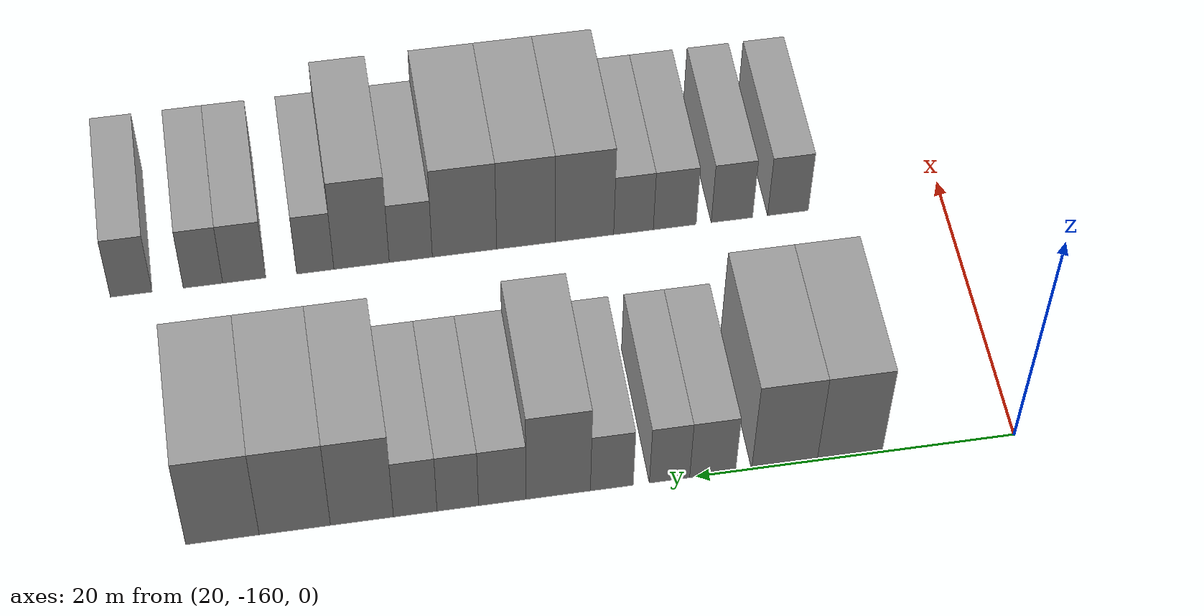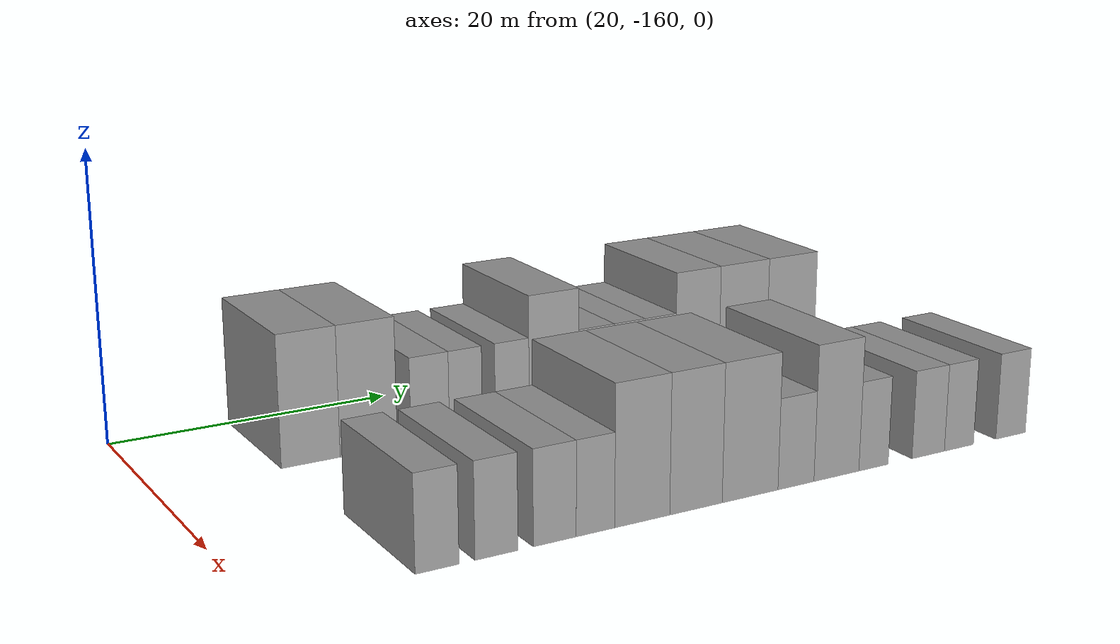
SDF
<sdf version="1.6">
 <world name="default">
  <model name="building_13">
   <static>1</static>
   <pose>25.0000 -149.5801 0 0.000000 0.000000 0.000000</pose>
   <link name="link">
    <pose>0 0 4.50 0 0 0</pose>
    <collision name="collision"><geometry><box><size>10.0000 4.0890 9.0000</size></box></geometry></collision>
    <visual name="visual">
     <cast_shadows>0</cast_shadows>
     <geometry><box><size>10.0000 4.0890 9.0000</size></box></geometry>
     <material>
      <script>
       <uri>model://grey_wall/materials/scripts</uri>
       <uri>model://grey_wall/materials/textures</uri>
       <name>vrc/grey_wall</name>
      </script>
     </material>
    </visual>
   </link>
  </model>
  <model name="building_14">
   <static>1</static>
   <pose>25.0000 -145.4824 0 0.000000 0.000000 0.000000</pose>
   <link name="link">
    <pose>0 0 4.50 0 0 0</pose>
    <collision name="collision"><geometry><box><size>10.0000 4.1064 9.0000</size></box></geometry></collision>
    <visual name="visual">
     <cast_shadows>0</cast_shadows>
     <geometry><box><size>10.0000 4.1064 9.0000</size></box></geometry>
     <material>
      <script>
       <uri>model://grey_wall/materials/scripts</uri>
       <uri>model://grey_wall/materials/textures</uri>
       <name>vrc/grey_wall</name>
      </script>
     </material>
    </visual>
   </link>
  </model>
  <model name="building_15">
   <static>1</static>
   <pose>25.0000 -140.9967 0 0.000000 0.000000 0.000000</pose>
   <link name="link">
    <pose>0 0 3.00 0 0 0</pose>
    <collision name="collision"><geometry><box><size>10.0000 2.8648 6.0000</size></box></geometry></collision>
    <visual name="visual">
     <cast_shadows>0</cast_shadows>
     <geometry><box><size>10.0000 2.8648 6.0000</size></box></geometry>
     <material>
      <script>
       <uri>model://grey_wall/materials/scripts</uri>
       <uri>model://grey_wall/materials/textures</uri>
       <name>vrc/grey_wall</name>
      </script>
     </material>
    </visual>
   </link>
  </model>
  <model name="building_16">
   <static>1</static>
   <pose>25.0000 -138.3111 0 0.000000 0.000000 0.000000</pose>
   <link name="link">
    <pose>0 0 3.00 0 0 0</pose>
    <collision name="collision"><geometry><box><size>10.0000 2.5065 6.0000</size></box></geometry></collision>
    <visual name="visual">
     <cast_shadows>0</cast_shadows>
     <geometry><box><size>10.0000 2.5065 6.0000</size></box></geometry>
     <material>
      <script>
       <uri>model://grey_wall/materials/scripts</uri>
       <uri>model://grey_wall/materials/textures</uri>
       <name>vrc/grey_wall</name>
      </script>
     </material>
    </visual>
   </link>
  </model>
  <model name="building_17">
   <static>1</static>
   <pose>25.0000 -134.7319 0 0.000000 0.000000 0.000000</pose>
   <link name="link">
    <pose>0 0 3.00 0 0 0</pose>
    <collision name="collision"><geometry><box><size>10.0000 2.6518 6.0000</size></box></geometry></collision>
    <visual name="visual">
     <cast_shadows>0</cast_shadows>
     <geometry><box><size>10.0000 2.6518 6.0000</size></box></geometry>
     <material>
      <script>
       <uri>model://grey_wall/materials/scripts</uri>
       <uri>model://grey_wall/materials/textures</uri>
       <name>vrc/grey_wall</name>
      </script>
     </material>
    </visual>
   </link>
  </model>
  <model name="building_18">
   <static>1</static>
   <pose>25.0000 -131.4228 0 0.000000 0.000000 0.000000</pose>
   <link name="link">
    <pose>0 0 4.50 0 0 0</pose>
    <collision name="collision"><geometry><box><size>10.0000 3.9664 9.0000</size></box></geometry></collision>
    <visual name="visual">
     <cast_shadows>0</cast_shadows>
     <geometry><box><size>10.0000 3.9664 9.0000</size></box></geometry>
     <material>
      <script>
       <uri>model://grey_wall/materials/scripts</uri>
       <uri>model://grey_wall/materials/textures</uri>
       <name>vrc/grey_wall</name>
      </script>
     </material>
    </visual>
   </link>
  </model>
  <model name="building_19">
   <static>1</static>
   <pose>25.0000 -127.9781 0 0.000000 0.000000 0.000000</pose>
   <link name="link">
    <pose>0 0 3.00 0 0 0</pose>
    <collision name="collision"><geometry><box><size>10.0000 2.9230 6.0000</size></box></geometry></collision>
    <visual name="visual">
     <cast_shadows>0</cast_shadows>
     <geometry><box><size>10.0000 2.9230 6.0000</size></box></geometry>
     <material>
      <script>
       <uri>model://grey_wall/materials/scripts</uri>
       <uri>model://grey_wall/materials/textures</uri>
       <name>vrc/grey_wall</name>
      </script>
     </material>
    </visual>
   </link>
  </model>
  <model name="building_20">
   <static>1</static>
   <pose>25.0000 -125.2448 0 0.000000 0.000000 0.000000</pose>
   <link name="link">
    <pose>0 0 3.00 0 0 0</pose>
    <collision name="collision"><geometry><box><size>10.0000 2.5437 6.0000</size></box></geometry></collision>
    <visual name="visual">
     <cast_shadows>0</cast_shadows>
     <geometry><box><size>10.0000 2.5437 6.0000</size></box></geometry>
     <material>
      <script>
       <uri>model://grey_wall/materials/scripts</uri>
       <uri>model://grey_wall/materials/textures</uri>
       <name>vrc/grey_wall</name>
      </script>
     </material>
    </visual>
   </link>
  </model>
  <model name="building_21">
   <static>1</static>
   <pose>25.0000 -122.6416 0 0.000000 0.000000 0.000000</pose>
   <link name="link">
    <pose>0 0 3.00 0 0 0</pose>
    <collision name="collision"><geometry><box><size>10.0000 2.6627 6.0000</size></box></geometry></collision>
    <visual name="visual">
     <cast_shadows>0</cast_shadows>
     <geometry><box><size>10.0000 2.6627 6.0000</size></box></geometry>
     <material>
      <script>
       <uri>model://grey_wall/materials/scripts</uri>
       <uri>model://grey_wall/materials/textures</uri>
       <name>vrc/grey_wall</name>
      </script>
     </material>
    </visual>
   </link>
  </model>
  <model name="building_22">
   <static>1</static>
   <pose>25.0000 -119.3938 0 0.000000 0.000000 0.000000</pose>
   <link name="link">
    <pose>0 0 4.50 0 0 0</pose>
    <collision name="collision"><geometry><box><size>10.0000 3.8329 9.0000</size></box></geometry></collision>
    <visual name="visual">
     <cast_shadows>0</cast_shadows>
     <geometry><box><size>10.0000 3.8329 9.0000</size></box></geometry>
     <material>
      <script>
       <uri>model://grey_wall/materials/scripts</uri>
       <uri>model://grey_wall/materials/textures</uri>
       <name>vrc/grey_wall</name>
      </script>
     </material>
    </visual>
   </link>
  </model>
  <model name="building_23">
   <static>1</static>
   <pose>25.0000 -115.3170 0 0.000000 0.000000 0.000000</pose>
   <link name="link">
    <pose>0 0 4.50 0 0 0</pose>
    <collision name="collision"><geometry><box><size>10.0000 4.3206 9.0000</size></box></geometry></collision>
    <visual name="visual">
     <cast_shadows>0</cast_shadows>
     <geometry><box><size>10.0000 4.3206 9.0000</size></box></geometry>
     <material>
      <script>
       <uri>model://grey_wall/materials/scripts</uri>
       <uri>model://grey_wall/materials/textures</uri>
       <name>vrc/grey_wall</name>
      </script>
     </material>
    </visual>
   </link>
  </model>
  <model name="building_24">
   <static>1</static>
   <pose>25.0000 -110.9429 0 0.000000 0.000000 0.000000</pose>
   <link name="link">
    <pose>0 0 4.50 0 0 0</pose>
    <collision name="collision"><geometry><box><size>10.0000 4.4276 9.0000</size></box></geometry></collision>
    <visual name="visual">
     <cast_shadows>0</cast_shadows>
     <geometry><box><size>10.0000 4.4276 9.0000</size></box></geometry>
     <material>
      <script>
       <uri>model://grey_wall/materials/scripts</uri>
       <uri>model://grey_wall/materials/textures</uri>
       <name>vrc/grey_wall</name>
      </script>
     </material>
    </visual>
   </link>
  </model>
  <model name="building_108">
   <static>1</static>
   <pose>44.0000 -149.7083 0 0.000000 0.000000 0.000000</pose>
   <link name="link">
    <pose>0 0 3.00 0 0 0</pose>
    <collision name="collision"><geometry><box><size>10.0000 2.7293 6.0000</size></box></geometry></collision>
    <visual name="visual">
     <cast_shadows>0</cast_shadows>
     <geometry><box><size>10.0000 2.7293 6.0000</size></box></geometry>
     <material>
      <script>
       <uri>model://grey_wall/materials/scripts</uri>
       <uri>model://grey_wall/materials/textures</uri>
       <name>vrc/grey_wall</name>
      </script>
     </material>
    </visual>
   </link>
  </model>
  <model name="building_109">
   <static>1</static>
   <pose>44.0000 -145.9600 0 0.000000 0.000000 0.000000</pose>
   <link name="link">
    <pose>0 0 3.00 0 0 0</pose>
    <collision name="collision"><geometry><box><size>10.0000 2.7674 6.0000</size></box></geometry></collision>
    <visual name="visual">
     <cast_shadows>0</cast_shadows>
     <geometry><box><size>10.0000 2.7674 6.0000</size></box></geometry>
     <material>
      <script>
       <uri>model://grey_wall/materials/scripts</uri>
       <uri>model://grey_wall/materials/textures</uri>
       <name>vrc/grey_wall</name>
      </script>
     </material>
    </visual>
   </link>
  </model>
  <model name="building_110">
   <static>1</static>
   <pose>44.0000 -142.1469 0 0.000000 0.000000 0.000000</pose>
   <link name="link">
    <pose>0 0 3.00 0 0 0</pose>
    <collision name="collision"><geometry><box><size>10.0000 2.8588 6.0000</size></box></geometry></collision>
    <visual name="visual">
     <cast_shadows>0</cast_shadows>
     <geometry><box><size>10.0000 2.8588 6.0000</size></box></geometry>
     <material>
      <script>
       <uri>model://grey_wall/materials/scripts</uri>
       <uri>model://grey_wall/materials/textures</uri>
       <name>vrc/grey_wall</name>
      </script>
     </material>
    </visual>
   </link>
  </model>
  <model name="building_111">
   <static>1</static>
   <pose>44.0000 -139.4026 0 0.000000 0.000000 0.000000</pose>
   <link name="link">
    <pose>0 0 3.00 0 0 0</pose>
    <collision name="collision"><geometry><box><size>10.0000 2.6296 6.0000</size></box></geometry></collision>
    <visual name="visual">
     <cast_shadows>0</cast_shadows>
     <geometry><box><size>10.0000 2.6296 6.0000</size></box></geometry>
     <material>
      <script>
       <uri>model://grey_wall/materials/scripts</uri>
       <uri>model://grey_wall/materials/textures</uri>
       <name>vrc/grey_wall</name>
      </script>
     </material>
    </visual>
   </link>
  </model>
  <model name="building_112">
   <static>1</static>
   <pose>44.0000 -136.1478 0 0.000000 0.000000 0.000000</pose>
   <link name="link">
    <pose>0 0 4.50 0 0 0</pose>
    <collision name="collision"><geometry><box><size>10.0000 3.8801 9.0000</size></box></geometry></collision>
    <visual name="visual">
     <cast_shadows>0</cast_shadows>
     <geometry><box><size>10.0000 3.8801 9.0000</size></box></geometry>
     <material>
      <script>
       <uri>model://grey_wall/materials/scripts</uri>
       <uri>model://grey_wall/materials/textures</uri>
       <name>vrc/grey_wall</name>
      </script>
     </material>
    </visual>
   </link>
  </model>
  <model name="building_113">
   <static>1</static>
   <pose>44.0000 -132.2910 0 0.000000 0.000000 0.000000</pose>
   <link name="link">
    <pose>0 0 4.50 0 0 0</pose>
    <collision name="collision"><geometry><box><size>10.0000 3.8334 9.0000</size></box></geometry></collision>
    <visual name="visual">
     <cast_shadows>0</cast_shadows>
     <geometry><box><size>10.0000 3.8334 9.0000</size></box></geometry>
     <material>
      <script>
       <uri>model://grey_wall/materials/scripts</uri>
       <uri>model://grey_wall/materials/textures</uri>
       <name>vrc/grey_wall</name>
      </script>
     </material>
    </visual>
   </link>
  </model>
  <model name="building_114">
   <static>1</static>
   <pose>44.0000 -128.2632 0 0.000000 0.000000 0.000000</pose>
   <link name="link">
    <pose>0 0 4.50 0 0 0</pose>
    <collision name="collision"><geometry><box><size>10.0000 4.2223 9.0000</size></box></geometry></collision>
    <visual name="visual">
     <cast_shadows>0</cast_shadows>
     <geometry><box><size>10.0000 4.2223 9.0000</size></box></geometry>
     <material>
      <script>
       <uri>model://grey_wall/materials/scripts</uri>
       <uri>model://grey_wall/materials/textures</uri>
       <name>vrc/grey_wall</name>
      </script>
     </material>
    </visual>
   </link>
  </model>
  <model name="building_115">
   <static>1</static>
   <pose>44.0000 -124.7446 0 0.000000 0.000000 0.000000</pose>
   <link name="link">
    <pose>0 0 3.00 0 0 0</pose>
    <collision name="collision"><geometry><box><size>10.0000 2.8148 6.0000</size></box></geometry></collision>
    <visual name="visual">
     <cast_shadows>0</cast_shadows>
     <geometry><box><size>10.0000 2.8148 6.0000</size></box></geometry>
     <material>
      <script>
       <uri>model://grey_wall/materials/scripts</uri>
       <uri>model://grey_wall/materials/textures</uri>
       <name>vrc/grey_wall</name>
      </script>
     </material>
    </visual>
   </link>
  </model>
  <model name="building_116">
   <static>1</static>
   <pose>44.0000 -121.5329 0 0.000000 0.000000 0.000000</pose>
   <link name="link">
    <pose>0 0 4.50 0 0 0</pose>
    <collision name="collision"><geometry><box><size>10.0000 3.6087 9.0000</size></box></geometry></collision>
    <visual name="visual">
     <cast_shadows>0</cast_shadows>
     <geometry><box><size>10.0000 3.6087 9.0000</size></box></geometry>
     <material>
      <script>
       <uri>model://grey_wall/materials/scripts</uri>
       <uri>model://grey_wall/materials/textures</uri>
       <name>vrc/grey_wall</name>
      </script>
     </material>
    </visual>
   </link>
  </model>
  <model name="building_117">
   <static>1</static>
   <pose>44.0000 -118.5211 0 0.000000 0.000000 0.000000</pose>
   <link name="link">
    <pose>0 0 3.00 0 0 0</pose>
    <collision name="collision"><geometry><box><size>10.0000 2.4150 6.0000</size></box></geometry></collision>
    <visual name="visual">
     <cast_shadows>0</cast_shadows>
     <geometry><box><size>10.0000 2.4150 6.0000</size></box></geometry>
     <material>
      <script>
       <uri>model://grey_wall/materials/scripts</uri>
       <uri>model://grey_wall/materials/textures</uri>
       <name>vrc/grey_wall</name>
      </script>
     </material>
    </visual>
   </link>
  </model>
  <model name="building_118">
   <static>1</static>
   <pose>44.0000 -113.9217 0 0.000000 0.000000 0.000000</pose>
   <link name="link">
    <pose>0 0 3.00 0 0 0</pose>
    <collision name="collision"><geometry><box><size>10.0000 2.7839 6.0000</size></box></geometry></collision>
    <visual name="visual">
     <cast_shadows>0</cast_shadows>
     <geometry><box><size>10.0000 2.7839 6.0000</size></box></geometry>
     <material>
      <script>
       <uri>model://grey_wall/materials/scripts</uri>
       <uri>model://grey_wall/materials/textures</uri>
       <name>vrc/grey_wall</name>
      </script>
     </material>
    </visual>
   </link>
  </model>
  <model name="building_119">
   <static>1</static>
   <pose>44.0000 -111.2571 0 0.000000 0.000000 0.000000</pose>
   <link name="link">
    <pose>0 0 3.00 0 0 0</pose>
    <collision name="collision"><geometry><box><size>10.0000 2.5451 6.0000</size></box></geometry></collision>
    <visual name="visual">
     <cast_shadows>0</cast_shadows>
     <geometry><box><size>10.0000 2.5451 6.0000</size></box></geometry>
     <material>
      <script>
       <uri>model://grey_wall/materials/scripts</uri>
       <uri>model://grey_wall/materials/textures</uri>
       <name>vrc/grey_wall</name>
      </script>
     </material>
    </visual>
   </link>
  </model>
  <model name="building_120">
   <static>1</static>
   <pose>44.0000 -106.6463 0 0.000000 0.000000 0.000000</pose>
   <link name="link">
    <pose>0 0 3.00 0 0 0</pose>
    <collision name="collision"><geometry><box><size>10.0000 2.6765 6.0000</size></box></geometry></collision>
    <visual name="visual">
     <cast_shadows>0</cast_shadows>
     <geometry><box><size>10.0000 2.6765 6.0000</size></box></geometry>
     <material>
      <script>
       <uri>model://grey_wall/materials/scripts</uri>
       <uri>model://grey_wall/materials/textures</uri>
       <name>vrc/grey_wall</name>
      </script>
     </material>
    </visual>
   </link>
  </model>
 </world>
</sdf>
